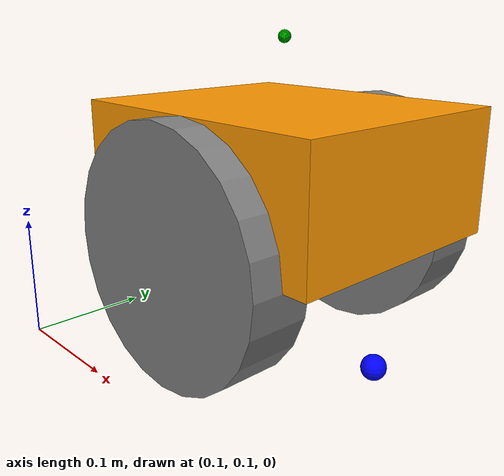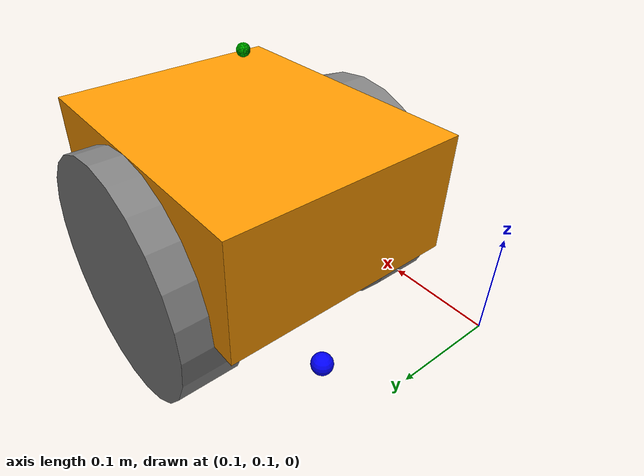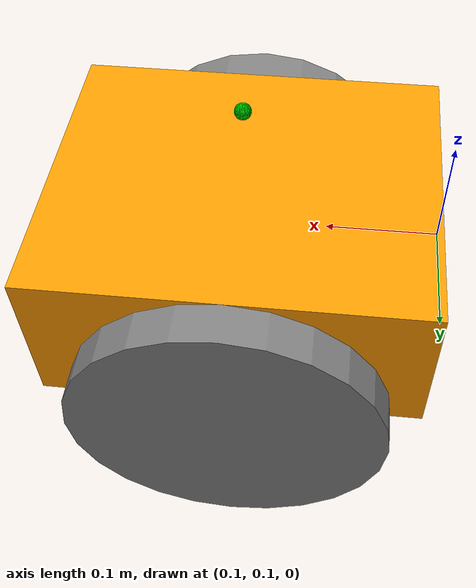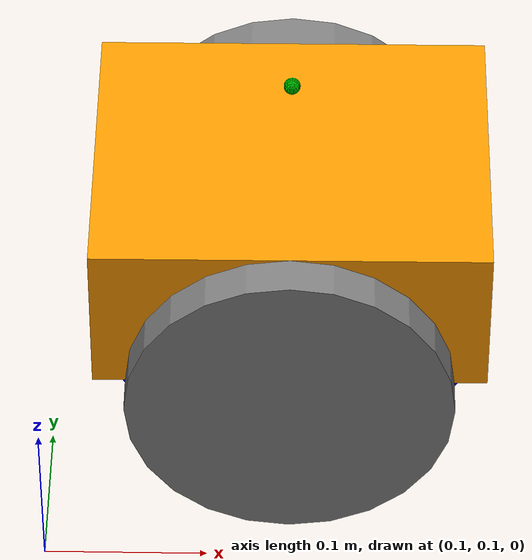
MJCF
<mujoco>

    <worldbody>
        <body name="base" pos=".25 .25 .15">
            <joint type="free"/>
            <geom type="box" size=".12 .1 .05" rgba="1 .6 0 1"/>
            <geom type="box" size=".03 .1 .045" rgba="1 .4 0 0" pos="-.12 0 -.09"/>

            <site name="lidar_r" pos="0 0 .1" rgba="0 1 0 1" quat=".707 .707 0 0"/>
            <site name="lidar_l" pos="0 0 .1" rgba="0 1 0 1" quat=".707 -.707 0 0"/>
            <site name="lidar_l_45" pos="0 0 .1" rgba="0 1 0 1" quat=".2706 .2706 .6533 .6533"/>
            <site name="lidar_r_45" pos="0 0 .1" rgba="0 1 0 1" quat=".6533 .6533 .2706 .2706"/>
            <site name="lidar_f" pos="0 0 .1" rgba="0 1 0 1" quat=".5 .5 .5 .5"/>
            <site name="lidar_b" pos="0 0 .1" rgba="0 1 0 1" quat=".5 -.5 -.5 .5"/>

            <body name="wheel_left" pos="0 .075 -.05">
                <joint name="left" axis="0 1 0"/>
                <geom type="cylinder" size=".1" fromto="0 0 0 0 .05 0"/>
            </body>
            <body name="wheel_right" pos="0 -.075 -.05">
                <joint name="right" axis="0 1 0"/>
                <geom type="cylinder" size=".1" fromto="0 0 0 0 -.05 0"/>
            </body>
            <body name="ball" pos="-.1 0 -.14">
                <joint type="ball"/>
                <geom type="sphere" size=".01" rgba="0 0 1 1"/>
            </body>
            <body name="ball1" pos=".1 0 -.14">
                <joint type="ball"/>
                <geom type="sphere" size=".01" rgba="0 0 1 1"/>
            </body>
        </body>
    </worldbody>

    <actuator>
        <velocity name="motor_left" joint="left" kv="10" ctrlrange="-20 20"/>
        <velocity name="motor_right" joint="right" kv="10" ctrlrange="-20 20"/>
    </actuator>

    <sensor>
        <rangefinder name="lidar_r" site="lidar_r" cutoff="10"/>
        <rangefinder name="lidar_l" site="lidar_l" cutoff="10"/>
        <rangefinder name="lidar_l_45" site="lidar_l_45" cutoff="10"/>
        <rangefinder name="lidar_r_45" site="lidar_r_45" cutoff="10"/>
        <rangefinder name="lidar_f" site="lidar_f" cutoff="10"/>
        <rangefinder name="lidar_b" site="lidar_b" cutoff="10"/>
    </sensor>

</mujoco>
